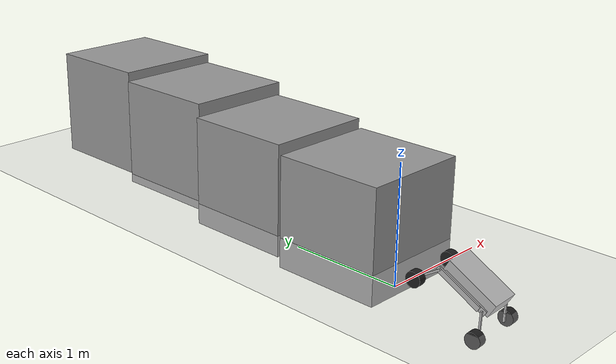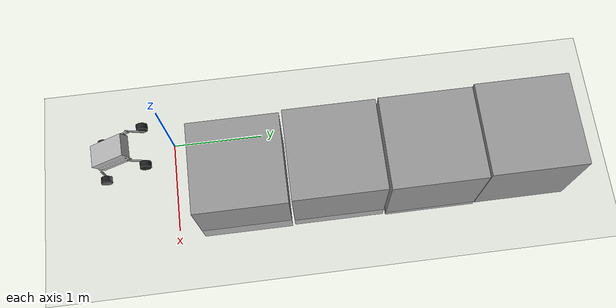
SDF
<sdf version="1.7">
 <world name="default">
  <light name="sun" type="directional">
   <pose>0 0 10 0 -0 0</pose>
   <diffuse>0.8 0.8 0.8 1</diffuse>
   <specular>0.2 0.2 0.2 1</specular>
   <attenuation>
    <range>1000</range>
    <constant>0.9</constant>
    <linear>0.01</linear>
    <quadratic>0.001</quadratic>
   </attenuation>
   <direction>-0.5 0.1 -0.9</direction>
   <spot><inner_angle>0</inner_angle><outer_angle>0</outer_angle><falloff>0</falloff></spot>
  </light>
  <model name="ground_plane">
   <static>1</static>
   <link name="link">
    <collision name="collision">
     <geometry><plane><normal>0 0 1</normal><size>100 100</size></plane></geometry>
     <surface>
      <contact><collide_bitmask>65535</collide_bitmask></contact>
      <friction><ode><mu>100</mu><mu2>50</mu2></ode></friction>
     </surface>
    </collision>
    <visual name="visual">
     <cast_shadows>0</cast_shadows>
     <geometry><plane><normal>0 0 1</normal><size>100 100</size></plane></geometry>
     <material>
      <script><uri>file://media/materials/scripts/gazebo.material</uri><name>Gazebo/Grey</name></script>
     </material>
    </visual>
   </link>
  </model>
  <gravity>0 0 -9.8</gravity>
  <magnetic_field>6e-06 2.3e-05 -4.2e-05</magnetic_field>
  <atmosphere type="adiabatic"/>
  <physics type="ode">
   <max_step_size>0.001</max_step_size>
   <real_time_factor>1</real_time_factor>
   <real_time_update_rate>1000</real_time_update_rate>
  </physics>
  <scene><ambient>0.4 0.4 0.4 1</ambient><background>0.7 0.7 0.7 1</background><shadows>1</shadows></scene>
  <audio><device>default</device></audio>
  <spherical_coordinates>
   <surface_model>EARTH_WGS84</surface_model>
   <latitude_deg>0</latitude_deg>
   <longitude_deg>0</longitude_deg>
   <elevation>0</elevation>
   <heading_deg>0</heading_deg>
  </spherical_coordinates>
  <model name="terratrek_robot">
   <link name="base_link">
    <inertial>
     <pose>0 0 0.5 0 -0 0</pose>
     <mass>0.5</mass>
     <inertia>
      <ixx>0.00330938</ixx>
      <ixy>0</ixy>
      <ixz>0</ixz>
      <iyy>0.0090375</iyy>
      <iyz>0</iyz>
      <izz>0.0111469</izz>
     </inertia>
    </inertial>
    <collision name="base_link_fixed_joint_lump__chassis_collision">
     <pose>0 0 0.5 0 -0 0</pose>
     <geometry><box><size>0.45 0.255 0.12</size></box></geometry>
    </collision>
    <visual name="base_link_fixed_joint_lump__chassis_visual">
     <pose>0 0 0.5 0 -0 0</pose>
     <geometry><box><size>0.45 0.255 0.12</size></box></geometry>
    </visual>
   </link>
   <joint name="left_arm_inner_joint" type="revolute">
    <pose relative_to="base_link">0 0.1425 0.462 0 -0 0</pose>
    <parent>base_link</parent>
    <child>left_arm_inner</child>
    <axis>
     <xyz>0 1 0</xyz>
     <limit><lower>-0.523599</lower><upper>0.523599</upper><effort>30</effort><velocity>1</velocity></limit>
     <dynamics>
      <damping>2</damping>
      <friction>0.1</friction>
      <spring_reference>0</spring_reference>
      <spring_stiffness>0</spring_stiffness>
     </dynamics>
    </axis>
   </joint>
   <link name="left_arm_inner">
    <pose relative_to="left_arm_inner_joint">0 0 0 0 -0 0</pose>
    <inertial>
     <pose>0.161467 0.0155 -0.012581 0 -0 0</pose>
     <mass>0.6</mass>
     <inertia>
      <ixx>0.0023073</ixx>
      <ixy>0.000500908</ixy>
      <ixz>-0.00285136</ixz>
      <iyy>0.0266699</iyy>
      <iyz>0.000315727</iyz>
      <izz>0.0245714</izz>
     </inertia>
    </inertial>
    <collision name="left_arm_inner_collision">
     <geometry><box><size>0.4064 0.015 0.045</size></box></geometry>
    </collision>
    <collision name="left_arm_inner_fixed_joint_lump__BL_leg_collision_1">
     <pose>-0.228921 0.03 -0.082742 0 -1.0821 0</pose>
     <geometry><box><size>0.225 0.015 0.015</size></box></geometry>
    </collision>
    <collision name="left_arm_inner_fixed_joint_lump__left_arm_outer_collision_2">
     <pose>0.052 0.016 0 0 -0 0</pose>
     <geometry><box><size>0.4064 0.015 0.045</size></box></geometry>
    </collision>
    <collision name="left_arm_inner_fixed_joint_lump__FL_leg_collision_3">
     <pose>0.280921 0.031 -0.082742 3.14159 -1.0821 3.14159</pose>
     <geometry><box><size>0.225 0.015 0.015</size></box></geometry>
    </collision>
    <visual name="left_arm_inner_visual"><geometry><box><size>0.4064 0.015 0.045</size></box></geometry></visual>
    <visual name="left_arm_inner_fixed_joint_lump__BL_leg_visual_1">
     <pose>-0.228921 0.03 -0.082742 0 -1.0821 0</pose>
     <geometry><box><size>0.225 0.015 0.015</size></box></geometry>
    </visual>
    <visual name="left_arm_inner_fixed_joint_lump__left_arm_outer_visual_2">
     <pose>0.052 0.016 0 0 -0 0</pose>
     <geometry><box><size>0.4064 0.015 0.045</size></box></geometry>
    </visual>
    <visual name="left_arm_inner_fixed_joint_lump__FL_leg_visual_3">
     <pose>0.280921 0.031 -0.082742 3.14159 -1.0821 3.14159</pose>
     <geometry><box><size>0.225 0.015 0.015</size></box></geometry>
    </visual>
   </link>
   <joint name="BL_wheel_joint" type="revolute">
    <pose relative_to="left_arm_inner">-0.27 0.079925 -0.16 -1.5708 -1.0821 0</pose>
    <parent>left_arm_inner</parent>
    <child>BL_wheel</child>
    <axis>
     <xyz>0 0 1</xyz>
     <limit><lower>-1e+16</lower><upper>1e+16</upper></limit>
     <dynamics><spring_reference>0</spring_reference><spring_stiffness>0</spring_stiffness></dynamics>
    </axis>
   </joint>
   <link name="BL_wheel">
    <pose relative_to="BL_wheel_joint">0 0 0 0 -0 0</pose>
    <inertial>
     <mass>0.02</mass>
     <inertia>
      <ixx>2.8293e-05</ixx>
      <ixy>0</ixy>
      <ixz>0</ixz>
      <iyy>2.8293e-05</iyy>
      <iyz>0</iyz>
      <izz>4.03225e-05</izz>
     </inertia>
    </inertial>
    <collision name="BL_wheel_collision"><geometry><sphere><radius>0.0635</radius></sphere></geometry></collision>
    <visual name="BL_wheel_visual">
     <geometry><cylinder><length>0.06985</length><radius>0.0635</radius></cylinder></geometry>
     <material>
      <script><name>Gazebo/Black</name><uri>file://media/materials/scripts/gazebo.material</uri></script>
     </material>
    </visual>
   </link>
   <joint name="FL_wheel_joint" type="revolute">
    <pose relative_to="left_arm_inner">0.322 0.080925 -0.16 1.5708 -1.0821 3.14159</pose>
    <parent>left_arm_inner</parent>
    <child>FL_wheel</child>
    <axis>
     <xyz>0 0 1</xyz>
     <limit><lower>-1e+16</lower><upper>1e+16</upper></limit>
     <dynamics><spring_reference>0</spring_reference><spring_stiffness>0</spring_stiffness></dynamics>
    </axis>
   </joint>
   <link name="FL_wheel">
    <pose relative_to="FL_wheel_joint">0 0 0 0 -0 0</pose>
    <inertial>
     <mass>0.02</mass>
     <inertia>
      <ixx>2.8293e-05</ixx>
      <ixy>0</ixy>
      <ixz>0</ixz>
      <iyy>2.8293e-05</iyy>
      <iyz>0</iyz>
      <izz>4.03225e-05</izz>
     </inertia>
    </inertial>
    <collision name="FL_wheel_collision"><geometry><sphere><radius>0.0635</radius></sphere></geometry></collision>
    <visual name="FL_wheel_visual">
     <geometry><cylinder><length>0.06985</length><radius>0.0635</radius></cylinder></geometry>
     <material>
      <script><name>Gazebo/Black</name><uri>file://media/materials/scripts/gazebo.material</uri></script>
     </material>
    </visual>
   </link>
   <joint name="right_arm_inner_joint" type="revolute">
    <pose relative_to="base_link">0 -0.1425 0.462 0 -0 0</pose>
    <parent>base_link</parent>
    <child>right_arm_inner</child>
    <axis>
     <xyz>0 1 0</xyz>
     <limit><lower>-0.523599</lower><upper>0.523599</upper><effort>30</effort><velocity>1</velocity></limit>
     <dynamics>
      <damping>2</damping>
      <friction>0.1</friction>
      <spring_reference>0</spring_reference>
      <spring_stiffness>0</spring_stiffness>
     </dynamics>
    </axis>
   </joint>
   <link name="right_arm_inner">
    <pose relative_to="right_arm_inner_joint">0 0 0 0 -0 0</pose>
    <inertial>
     <pose>0.161467 -0.0155 -0.012581 0 -0 0</pose>
     <mass>0.6</mass>
     <inertia>
      <ixx>0.0023073</ixx>
      <ixy>-0.000500908</ixy>
      <ixz>-0.00285136</ixz>
      <iyy>0.0266699</iyy>
      <iyz>-0.000315727</iyz>
      <izz>0.0245714</izz>
     </inertia>
    </inertial>
    <collision name="right_arm_inner_collision">
     <geometry><box><size>0.4064 0.015 0.045</size></box></geometry>
    </collision>
    <collision name="right_arm_inner_fixed_joint_lump__BR_leg_collision_1">
     <pose>-0.228921 -0.03 -0.082742 0 -1.0821 0</pose>
     <geometry><box><size>0.225 0.015 0.015</size></box></geometry>
    </collision>
    <collision name="right_arm_inner_fixed_joint_lump__right_arm_outer_collision_2">
     <pose>0.052 -0.016 0 0 -0 0</pose>
     <geometry><box><size>0.4064 0.015 0.045</size></box></geometry>
    </collision>
    <collision name="right_arm_inner_fixed_joint_lump__FR_leg_collision_3">
     <pose>0.280921 -0.031 -0.082742 3.14159 -1.0821 3.14159</pose>
     <geometry><box><size>0.225 0.015 0.015</size></box></geometry>
    </collision>
    <visual name="right_arm_inner_visual"><geometry><box><size>0.4064 0.015 0.045</size></box></geometry></visual>
    <visual name="right_arm_inner_fixed_joint_lump__BR_leg_visual_1">
     <pose>-0.228921 -0.03 -0.082742 0 -1.0821 0</pose>
     <geometry><box><size>0.225 0.015 0.015</size></box></geometry>
    </visual>
    <visual name="right_arm_inner_fixed_joint_lump__right_arm_outer_visual_2">
     <pose>0.052 -0.016 0 0 -0 0</pose>
     <geometry><box><size>0.4064 0.015 0.045</size></box></geometry>
    </visual>
    <visual name="right_arm_inner_fixed_joint_lump__FR_leg_visual_3">
     <pose>0.280921 -0.031 -0.082742 3.14159 -1.0821 3.14159</pose>
     <geometry><box><size>0.225 0.015 0.015</size></box></geometry>
    </visual>
   </link>
   <joint name="BR_wheel_joint" type="revolute">
    <pose relative_to="right_arm_inner">-0.27 -0.079925 -0.16 -1.5708 -1.0821 0</pose>
    <parent>right_arm_inner</parent>
    <child>BR_wheel</child>
    <axis>
     <xyz>0 0 1</xyz>
     <limit><lower>-1e+16</lower><upper>1e+16</upper></limit>
     <dynamics><spring_reference>0</spring_reference><spring_stiffness>0</spring_stiffness></dynamics>
    </axis>
   </joint>
   <link name="BR_wheel">
    <pose relative_to="BR_wheel_joint">0 0 0 0 -0 0</pose>
    <inertial>
     <mass>0.02</mass>
     <inertia>
      <ixx>2.8293e-05</ixx>
      <ixy>0</ixy>
      <ixz>0</ixz>
      <iyy>2.8293e-05</iyy>
      <iyz>0</iyz>
      <izz>4.03225e-05</izz>
     </inertia>
    </inertial>
    <collision name="BR_wheel_collision"><geometry><sphere><radius>0.0635</radius></sphere></geometry></collision>
    <visual name="BR_wheel_visual">
     <geometry><cylinder><length>0.06985</length><radius>0.0635</radius></cylinder></geometry>
     <material>
      <script><name>Gazebo/Black</name><uri>file://media/materials/scripts/gazebo.material</uri></script>
     </material>
    </visual>
   </link>
   <joint name="FR_wheel_joint" type="revolute">
    <pose relative_to="right_arm_inner">0.322 -0.080925 -0.16 1.5708 -1.0821 3.14159</pose>
    <parent>right_arm_inner</parent>
    <child>FR_wheel</child>
    <axis>
     <xyz>0 0 1</xyz>
     <limit><lower>-1e+16</lower><upper>1e+16</upper></limit>
     <dynamics><spring_reference>0</spring_reference><spring_stiffness>0</spring_stiffness></dynamics>
    </axis>
   </joint>
   <link name="FR_wheel">
    <pose relative_to="FR_wheel_joint">0 0 0 0 -0 0</pose>
    <inertial>
     <mass>0.02</mass>
     <inertia>
      <ixx>2.8293e-05</ixx>
      <ixy>0</ixy>
      <ixz>0</ixz>
      <iyy>2.8293e-05</iyy>
      <iyz>0</iyz>
      <izz>4.03225e-05</izz>
     </inertia>
    </inertial>
    <collision name="FR_wheel_collision"><geometry><sphere><radius>0.0635</radius></sphere></geometry></collision>
    <visual name="FR_wheel_visual">
     <geometry><cylinder><length>0.06985</length><radius>0.0635</radius></cylinder></geometry>
     <material>
      <script><name>Gazebo/Black</name><uri>file://media/materials/scripts/gazebo.material</uri></script>
     </material>
    </visual>
   </link>
   <plugin name="joint_states" filename="libgazebo_ros_joint_state_publisher.so">
    <ros><remapping>~/out:=joint_states</remapping></ros>
    <update_rate>30</update_rate>
    <joint_name>right_arm_inner_joint</joint_name>
    <joint_name>right_arm_outer_joint</joint_name>
    <joint_name>BL_wheel_joint</joint_name>
    <joint_name>BR_wheel_joint</joint_name>
    <joint_name>FL_wheel_joint</joint_name>
    <joint_name>FR_wheel_joint</joint_name>
   </plugin>
   <static>0</static>
   <plugin name="skid_steer_drive" filename="libgazebo_ros2_control.so">
    <parameters>/home/carter/ros2_ws/install/terratrek_robot/share/terratrek_robot/config/my_controllers.yaml</parameters>
   </plugin>
   <pose>0.055637 -0.426934 -0.17661 -2.5e-05 -0.523599 1.62277</pose>
  </model>
  <model name="unit_box">
   <pose>0.584837 3.78856 0.499995 -0 1e-05 0.001131</pose>
   <link name="link">
    <inertial>
     <mass>1</mass>
     <inertia>
      <ixx>0.166667</ixx>
      <ixy>0</ixy>
      <ixz>0</ixz>
      <iyy>0.166667</iyy>
      <iyz>0</iyz>
      <izz>0.166667</izz>
     </inertia>
    </inertial>
    <collision name="collision"><geometry><box><size>1 1 1</size></box></geometry></collision>
    <visual name="visual">
     <geometry><box><size>1 1 1</size></box></geometry>
     <material>
      <script><name>Gazebo/Grey</name><uri>file://media/materials/scripts/gazebo.material</uri></script>
     </material>
    </visual>
   </link>
  </model>
  <model name="unit_box_0">
   <pose>0.577539 2.78826 0.415394 0 -0 0.001124</pose>
   <link name="link">
    <inertial>
     <mass>1</mass>
     <inertia>
      <ixx>0.166667</ixx>
      <ixy>0</ixy>
      <ixz>0</ixz>
      <iyy>0.166667</iyy>
      <iyz>0</iyz>
      <izz>0.166667</izz>
     </inertia>
    </inertial>
    <collision name="collision"><geometry><box><size>1 1 1</size></box></geometry></collision>
    <visual name="visual">
     <geometry><box><size>1 1 1</size></box></geometry>
     <material>
      <script><name>Gazebo/Grey</name><uri>file://media/materials/scripts/gazebo.material</uri></script>
     </material>
    </visual>
   </link>
  </model>
  <model name="unit_box_1">
   <pose>0.538935 1.77282 0.30347 0 -0 0</pose>
   <link name="link">
    <inertial>
     <mass>1</mass>
     <inertia>
      <ixx>0.166667</ixx>
      <ixy>0</ixy>
      <ixz>0</ixz>
      <iyy>0.166667</iyy>
      <iyz>0</iyz>
      <izz>0.166667</izz>
     </inertia>
    </inertial>
    <collision name="collision"><geometry><box><size>1 1 1</size></box></geometry></collision>
    <visual name="visual">
     <geometry><box><size>1 1 1</size></box></geometry>
     <material>
      <script><name>Gazebo/Grey</name><uri>file://media/materials/scripts/gazebo.material</uri></script>
     </material>
    </visual>
   </link>
  </model>
  <model name="unit_box_2">
   <pose>0.530889 0.74012 0.223553 0 -0 0</pose>
   <link name="link">
    <inertial>
     <mass>1</mass>
     <inertia>
      <ixx>0.166667</ixx>
      <ixy>0</ixy>
      <ixz>0</ixz>
      <iyy>0.166667</iyy>
      <iyz>0</iyz>
      <izz>0.166667</izz>
     </inertia>
    </inertial>
    <collision name="collision"><geometry><box><size>1 1 1</size></box></geometry></collision>
    <visual name="visual">
     <geometry><box><size>1 1 1</size></box></geometry>
     <material>
      <script><name>Gazebo/Grey</name><uri>file://media/materials/scripts/gazebo.material</uri></script>
     </material>
    </visual>
   </link>
  </model>
 </world>
</sdf>
